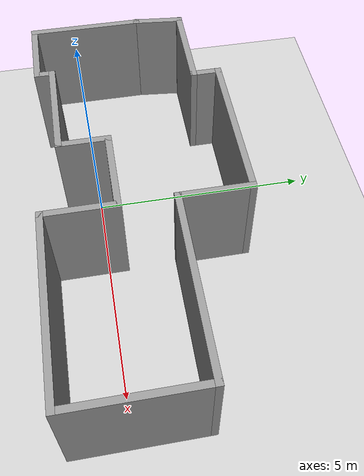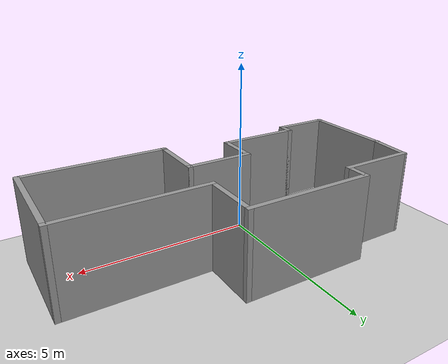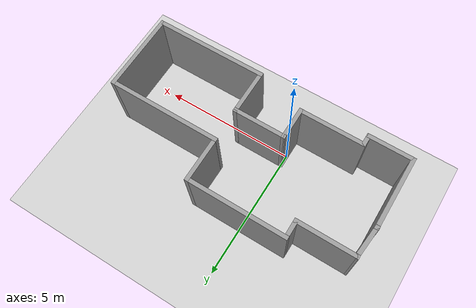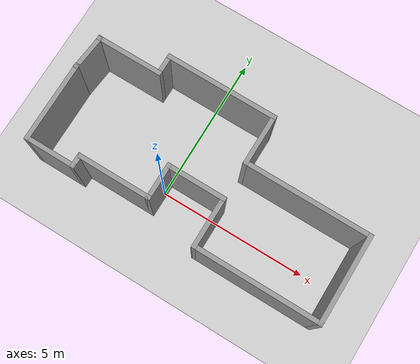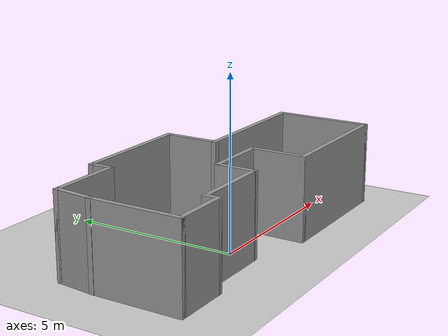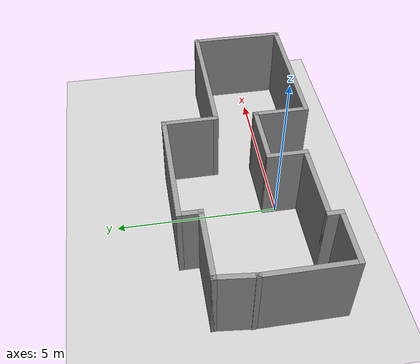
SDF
<sdf version="1.4">
  <world name="default">

    <scene>
      <ambient>0.4 0.4 0.4 1</ambient>
      <background>0.7 0.7 0.7 1</background>
      <shadows>true</shadows>
    </scene>

    <!-- A global light source -->
    <include>
      <uri>model://sun</uri>
    </include>

    <!-- A ground plane -->
    <include>
      <uri>model://ground_plane</uri>
    </include>

    <!-- My room -->
    <include>
      <uri>model://my_room</uri>
	<pose> 1 1 0 0 0 0 </pose>
    </include>

    <physics type="ode">
      <real_time_update_rate>1000.0</real_time_update_rate>
      <max_step_size>0.001</max_step_size>
      <real_time_factor>1</real_time_factor>
      <ode>
        <solver>
          <type>quick</type>
          <iters>150</iters>
          <precon_iters>0</precon_iters>
          <sor>1.400000</sor>
          <use_dynamic_moi_rescaling>1</use_dynamic_moi_rescaling>
        </solver>
        <constraints>
          <cfm>0.00001</cfm>
          <erp>0.2</erp>
          <contact_max_correcting_vel>2000.000000</contact_max_correcting_vel>
          <contact_surface_layer>0.01000</contact_surface_layer>
        </constraints>
      </ode>
    </physics>

<!-- Focus camera on tall pendulum -->
    <gui fullscreen='0'>
      <camera name='user_camera'>
        <pose>4.927360 -4.376610 3.740080 0.000000 0.275643 2.356190</pose>
        <view_controller>orbit</view_controller>
      </camera>
    </gui>
  </world>

</sdf>

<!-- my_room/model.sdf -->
<sdf version='1.7'>
  <model name='my_room'>
    <pose>-1.195 -1.775 0 0 -0 0</pose>
    <link name='Wall_0'>
      <collision name='Wall_0_Collision'>
        <geometry>
          <box>
            <size>0.16 0.15 2.5</size>
          </box>
        </geometry>
        <pose>0 0 1.25 0 -0 0</pose>
      </collision>
      <visual name='Wall_0_Visual'>
        <pose>0 0 1.25 0 -0 0</pose>
        <geometry>
          <box>
            <size>0.16 0.15 2.5</size>
          </box>
        </geometry>
        <material>
          <script>
            <uri>file://media/materials/scripts/gazebo.material</uri>
            <name>Gazebo/Grey</name>
          </script>
          <ambient>1 1 1 1</ambient>
        </material>
        <meta>
          <layer>0</layer>
        </meta>
      </visual>
      <pose>-4.95 0.525 0 0 -0 0</pose>
    </link>
    <link name='Wall_1'>
      <collision name='Wall_1_Collision'>
        <geometry>
          <box>
            <size>2.75 0.15 2.5</size>
          </box>
        </geometry>
        <pose>0 0 1.25 0 -0 0</pose>
      </collision>
      <visual name='Wall_1_Visual'>
        <pose>0 0 1.25 0 -0 0</pose>
        <geometry>
          <box>
            <size>2.75 0.15 2.5</size>
          </box>
        </geometry>
        <material>
          <script>
            <uri>file://media/materials/scripts/gazebo.material</uri>
            <name>Gazebo/Grey</name>
          </script>
          <ambient>1 1 1 1</ambient>
        </material>
        <meta>
          <layer>0</layer>
        </meta>
      </visual>
      <pose>-4.945 -0.775 0 0 -0 -1.5708</pose>
    </link>
    <link name='Wall_10'>
      <collision name='Wall_10_Collision'>
        <geometry>
          <box>
            <size>4.25 0.15 2.5</size>
          </box>
        </geometry>
        <pose>0 0 1.25 0 -0 0</pose>
      </collision>
      <visual name='Wall_10_Visual'>
        <pose>0 0 1.25 0 -0 0</pose>
        <geometry>
          <box>
            <size>4.25 0.15 2.5</size>
          </box>
        </geometry>
        <material>
          <script>
            <uri>file://media/materials/scripts/gazebo.material</uri>
            <name>Gazebo/Grey</name>
          </script>
          <ambient>1 1 1 1</ambient>
        </material>
        <meta>
          <layer>0</layer>
        </meta>
      </visual>
      <pose>2.905 0.625 0 0 -0 3.14159</pose>
    </link>
    <link name='Wall_11'>
      <collision name='Wall_11_Collision'>
        <geometry>
          <box>
            <size>1.75 0.15 2.5</size>
          </box>
        </geometry>
        <pose>0 0 1.25 0 -0 0</pose>
      </collision>
      <visual name='Wall_11_Visual'>
        <pose>0 0 1.25 0 -0 0</pose>
        <geometry>
          <box>
            <size>1.75 0.15 2.5</size>
          </box>
        </geometry>
        <material>
          <script>
            <uri>file://media/materials/scripts/gazebo.material</uri>
            <name>Gazebo/Grey</name>
          </script>
          <ambient>1 1 1 1</ambient>
        </material>
        <meta>
          <layer>0</layer>
        </meta>
      </visual>
      <pose>0.855 1.425 0 0 -0 1.5708</pose>
    </link>
    <link name='Wall_12'>
      <collision name='Wall_12_Collision'>
        <geometry>
          <box>
            <size>3.75 0.15 2.5</size>
          </box>
        </geometry>
        <pose>0 0 1.25 0 -0 0</pose>
      </collision>
      <visual name='Wall_12_Visual'>
        <pose>0 0 1.25 0 -0 0</pose>
        <geometry>
          <box>
            <size>3.75 0.15 2.5</size>
          </box>
        </geometry>
        <material>
          <script>
            <uri>file://media/materials/scripts/gazebo.material</uri>
            <name>Gazebo/Grey</name>
          </script>
          <ambient>1 1 1 1</ambient>
        </material>
        <meta>
          <layer>0</layer>
        </meta>
      </visual>
      <pose>-0.945 2.225 0 0 -0 3.14159</pose>
    </link>
    <link name='Wall_13'>
      <collision name='Wall_13_Collision'>
        <geometry>
          <box>
            <size>0.75 0.15 2.5</size>
          </box>
        </geometry>
        <pose>0 0 1.25 0 -0 0</pose>
      </collision>
      <visual name='Wall_13_Visual'>
        <pose>0 0 1.25 0 -0 0</pose>
        <geometry>
          <box>
            <size>0.75 0.15 2.5</size>
          </box>
        </geometry>
        <material>
          <script>
            <uri>file://media/materials/scripts/gazebo.material</uri>
            <name>Gazebo/Grey</name>
          </script>
          <ambient>1 1 1 1</ambient>
        </material>
        <meta>
          <layer>0</layer>
        </meta>
      </visual>
      <pose>-2.745 1.925 0 0 -0 -1.5708</pose>
    </link>
    <link name='Wall_14'>
      <collision name='Wall_14_Collision'>
        <geometry>
          <box>
            <size>2.25 0.15 2.5</size>
          </box>
        </geometry>
        <pose>0 0 1.25 0 -0 0</pose>
      </collision>
      <visual name='Wall_14_Visual'>
        <pose>0 0 1.25 0 -0 0</pose>
        <geometry>
          <box>
            <size>2.25 0.15 2.5</size>
          </box>
        </geometry>
        <material>
          <script>
            <uri>file://media/materials/scripts/gazebo.material</uri>
            <name>Gazebo/Grey</name>
          </script>
          <ambient>1 1 1 1</ambient>
        </material>
        <meta>
          <layer>0</layer>
        </meta>
      </visual>
      <pose>-3.795 1.625 0 0 -0 3.14159</pose>
    </link>
    <link name='Wall_15'>
      <collision name='Wall_15_Collision'>
        <geometry>
          <box>
            <size>0.16 0.15 2.5</size>
          </box>
        </geometry>
        <pose>0 0 1.25 0 -0 0</pose>
      </collision>
      <visual name='Wall_15_Visual'>
        <pose>0 0 1.25 0 -0 0</pose>
        <geometry>
          <box>
            <size>0.16 0.15 2.5</size>
          </box>
        </geometry>
        <material>
          <script>
            <uri>file://media/materials/scripts/gazebo.material</uri>
            <name>Gazebo/Grey</name>
          </script>
          <ambient>1 1 1 1</ambient>
        </material>
        <meta>
          <layer>0</layer>
        </meta>
      </visual>
      <pose>-4.84 1.625 0 0 -0 0</pose>
    </link>
    <link name='Wall_16'>
      <collision name='Wall_16_Collision'>
        <geometry>
          <box>
            <size>1.25549 0.15 2.5</size>
          </box>
        </geometry>
        <pose>0 0 1.25 0 -0 0</pose>
      </collision>
      <visual name='Wall_16_Visual'>
        <pose>0 0 1.25 0 -0 0</pose>
        <geometry>
          <box>
            <size>1.25549 0.15 2.5</size>
          </box>
        </geometry>
        <material>
          <script>
            <uri>file://media/materials/scripts/gazebo.material</uri>
            <name>Gazebo/Grey</name>
          </script>
          <ambient>1 1 1 1</ambient>
        </material>
        <meta>
          <layer>0</layer>
        </meta>
      </visual>
      <pose>-4.89 1.075 0 0 -0 -1.67047</pose>
    </link>
    <link name='Wall_2'>
      <collision name='Wall_2_Collision'>
        <geometry>
          <box>
            <size>1.75 0.15 2.5</size>
          </box>
        </geometry>
        <pose>0 0 1.25 0 -0 0</pose>
      </collision>
      <visual name='Wall_2_Visual'>
        <pose>0 0 1.25 0 -0 0</pose>
        <geometry>
          <box>
            <size>1.75 0.15 2.5</size>
          </box>
        </geometry>
        <material>
          <script>
            <uri>file://media/materials/scripts/gazebo.material</uri>
            <name>Gazebo/Grey</name>
          </script>
          <ambient>1 1 1 1</ambient>
        </material>
        <meta>
          <layer>0</layer>
        </meta>
      </visual>
      <pose>-4.145 -2.075 0 0 -0 0</pose>
    </link>
    <link name='Wall_3'>
      <collision name='Wall_3_Collision'>
        <geometry>
          <box>
            <size>0.5 0.15 2.5</size>
          </box>
        </geometry>
        <pose>0 0 1.25 0 -0 0</pose>
      </collision>
      <visual name='Wall_3_Visual'>
        <pose>0 0 1.25 0 -0 0</pose>
        <geometry>
          <box>
            <size>0.5 0.15 2.5</size>
          </box>
        </geometry>
        <material>
          <script>
            <uri>file://media/materials/scripts/gazebo.material</uri>
            <name>Gazebo/Grey</name>
          </script>
          <ambient>1 1 1 1</ambient>
        </material>
        <meta>
          <layer>0</layer>
        </meta>
      </visual>
      <pose>-3.345 -1.9 0 0 -0 1.5708</pose>
    </link>
    <link name='Wall_4'>
      <collision name='Wall_4_Collision'>
        <geometry>
          <box>
            <size>2.5 0.15 2.5</size>
          </box>
        </geometry>
        <pose>0 0 1.25 0 -0 0</pose>
      </collision>
      <visual name='Wall_4_Visual'>
        <pose>0 0 1.25 0 -0 0</pose>
        <geometry>
          <box>
            <size>2.5 0.15 2.5</size>
          </box>
        </geometry>
        <material>
          <script>
            <uri>file://media/materials/scripts/gazebo.material</uri>
            <name>Gazebo/Grey</name>
          </script>
          <ambient>1 1 1 1</ambient>
        </material>
        <meta>
          <layer>0</layer>
        </meta>
      </visual>
      <pose>-2.17 -1.725 0 0 -0 0</pose>
    </link>
    <link name='Wall_5'>
      <collision name='Wall_5_Collision'>
        <geometry>
          <box>
            <size>1.25 0.15 2.5</size>
          </box>
        </geometry>
        <pose>0 0 1.25 0 -0 0</pose>
      </collision>
      <visual name='Wall_5_Visual'>
        <pose>0 0 1.25 0 -0 0</pose>
        <geometry>
          <box>
            <size>1.25 0.15 2.5</size>
          </box>
        </geometry>
        <material>
          <script>
            <uri>file://media/materials/scripts/gazebo.material</uri>
            <name>Gazebo/Grey</name>
          </script>
          <ambient>1 1 1 1</ambient>
        </material>
        <meta>
          <layer>0</layer>
        </meta>
      </visual>
      <pose>-0.995 -1.175 0 0 -0 1.5708</pose>
    </link>
    <link name='Wall_6'>
      <collision name='Wall_6_Collision'>
        <geometry>
          <box>
            <size>2 0.15 2.5</size>
          </box>
        </geometry>
        <pose>0 0 1.25 0 -0 0</pose>
      </collision>
      <visual name='Wall_6_Visual'>
        <pose>0 0 1.25 0 -0 0</pose>
        <geometry>
          <box>
            <size>2 0.15 2.5</size>
          </box>
        </geometry>
        <material>
          <script>
            <uri>file://media/materials/scripts/gazebo.material</uri>
            <name>Gazebo/Grey</name>
          </script>
          <ambient>1 1 1 1</ambient>
        </material>
        <meta>
          <layer>0</layer>
        </meta>
      </visual>
      <pose>-0.07 -0.625 0 0 -0 0</pose>
    </link>
    <link name='Wall_7'>
      <collision name='Wall_7_Collision'>
        <geometry>
          <box>
            <size>1.75 0.15 2.5</size>
          </box>
        </geometry>
        <pose>0 0 1.25 0 -0 0</pose>
      </collision>
      <visual name='Wall_7_Visual'>
        <pose>0 0 1.25 0 -0 0</pose>
        <geometry>
          <box>
            <size>1.75 0.15 2.5</size>
          </box>
        </geometry>
        <material>
          <script>
            <uri>file://media/materials/scripts/gazebo.material</uri>
            <name>Gazebo/Grey</name>
          </script>
          <ambient>1 1 1 1</ambient>
        </material>
        <meta>
          <layer>0</layer>
        </meta>
      </visual>
      <pose>0.855 -1.425 0 0 -0 -1.5708</pose>
    </link>
    <link name='Wall_8'>
      <collision name='Wall_8_Collision'>
        <geometry>
          <box>
            <size>4.25 0.15 2.5</size>
          </box>
        </geometry>
        <pose>0 0 1.25 0 -0 0</pose>
      </collision>
      <visual name='Wall_8_Visual'>
        <pose>0 0 1.25 0 -0 0</pose>
        <geometry>
          <box>
            <size>4.25 0.15 2.5</size>
          </box>
        </geometry>
        <material>
          <script>
            <uri>file://media/materials/scripts/gazebo.material</uri>
            <name>Gazebo/Grey</name>
          </script>
          <ambient>1 1 1 1</ambient>
        </material>
        <meta>
          <layer>0</layer>
        </meta>
      </visual>
      <pose>2.905 -2.225 0 0 -0 0</pose>
    </link>
    <link name='Wall_9'>
      <collision name='Wall_9_Collision'>
        <geometry>
          <box>
            <size>3 0.15 2.5</size>
          </box>
        </geometry>
        <pose>0 0 1.25 0 -0 0</pose>
      </collision>
      <visual name='Wall_9_Visual'>
        <pose>0 0 1.25 0 -0 0</pose>
        <geometry>
          <box>
            <size>3 0.15 2.5</size>
          </box>
        </geometry>
        <material>
          <script>
            <uri>file://media/materials/scripts/gazebo.material</uri>
            <name>Gazebo/Grey</name>
          </script>
          <ambient>1 1 1 1</ambient>
        </material>
        <meta>
          <layer>0</layer>
        </meta>
      </visual>
      <pose>4.955 -0.8 0 0 -0 1.5708</pose>
    </link>
    <static>1</static>
  </model>
</sdf>
